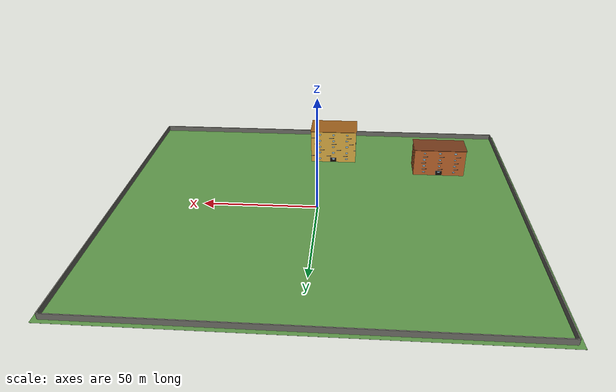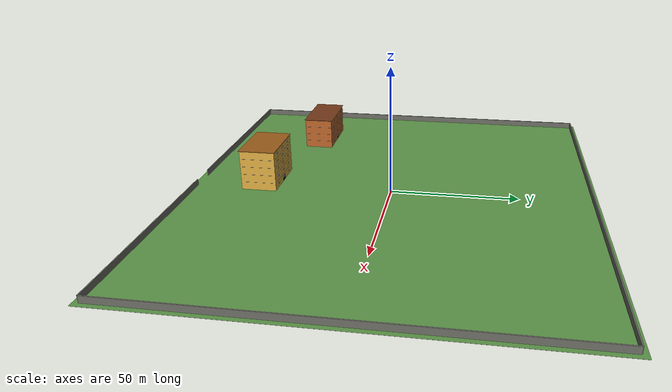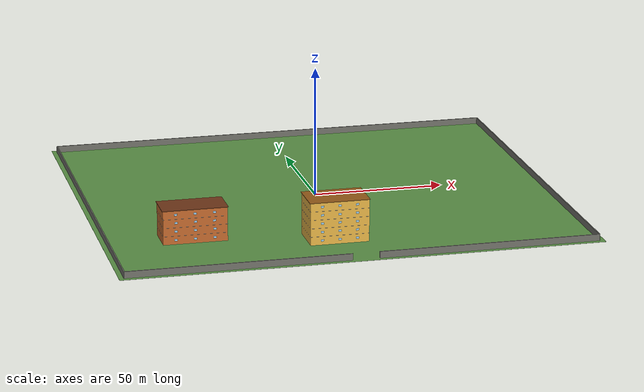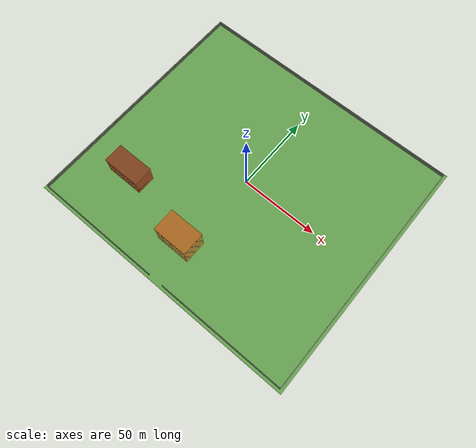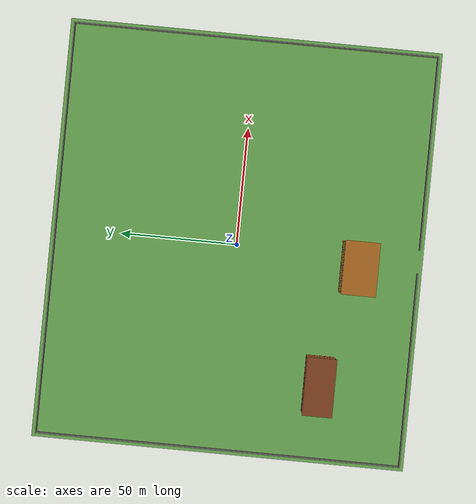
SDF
<sdf version="1.7">
 <world name="campus_regional">
  <model name="campus_ground">
   <static>true</static>
   <link name="ground">
    <pose>0.000 0.000 -0.015 0 0 0</pose>
    <collision name="collision"><geometry><box><size>180.000 160.000 0.030</size></box></geometry></collision>
    <visual name="visual">
     <geometry><box><size>180.000 160.000 0.030</size></box></geometry>
     <material><ambient>0.360 0.580 0.280 1.000</ambient><diffuse>0.360 0.580 0.280 1.000</diffuse></material>
    </visual>
   </link>
  </model>
  <model name="campus_wall">
   <static>true</static>
   <link name="west_wall">
    <pose>-88.000 0.000 1.250 0 0 0</pose>
    <collision name="collision"><geometry><box><size>0.400 156.000 2.500</size></box></geometry></collision>
    <visual name="visual">
     <geometry><box><size>0.400 156.000 2.500</size></box></geometry>
     <material><ambient>0.450 0.450 0.420 1.000</ambient><diffuse>0.450 0.450 0.420 1.000</diffuse></material>
    </visual>
   </link>
   <link name="east_wall">
    <pose>88.000 0.000 1.250 0 0 0</pose>
    <collision name="collision"><geometry><box><size>0.400 156.000 2.500</size></box></geometry></collision>
    <visual name="visual">
     <geometry><box><size>0.400 156.000 2.500</size></box></geometry>
     <material><ambient>0.450 0.450 0.420 1.000</ambient><diffuse>0.450 0.450 0.420 1.000</diffuse></material>
    </visual>
   </link>
   <link name="north_wall">
    <pose>0.000 78.000 1.250 0 0 0</pose>
    <collision name="collision"><geometry><box><size>176.000 0.400 2.500</size></box></geometry></collision>
    <visual name="visual">
     <geometry><box><size>176.000 0.400 2.500</size></box></geometry>
     <material><ambient>0.450 0.450 0.420 1.000</ambient><diffuse>0.450 0.450 0.420 1.000</diffuse></material>
    </visual>
   </link>
   <link name="south_wall_west">
    <pose>-46.500 -78.000 1.250 0 0 0</pose>
    <collision name="collision"><geometry><box><size>83.000 0.400 2.500</size></box></geometry></collision>
    <visual name="visual">
     <geometry><box><size>83.000 0.400 2.500</size></box></geometry>
     <material><ambient>0.450 0.450 0.420 1.000</ambient><diffuse>0.450 0.450 0.420 1.000</diffuse></material>
    </visual>
   </link>
   <link name="south_wall_east">
    <pose>46.500 -78.000 1.250 0 0 0</pose>
    <collision name="collision"><geometry><box><size>83.000 0.400 2.500</size></box></geometry></collision>
    <visual name="visual">
     <geometry><box><size>83.000 0.400 2.500</size></box></geometry>
     <material><ambient>0.450 0.450 0.420 1.000</ambient><diffuse>0.450 0.450 0.420 1.000</diffuse></material>
    </visual>
   </link>
  </model>
  <model name="cafeteria">
   <static>true</static>
   <pose>-5.0 -52.0 0 0 0 0</pose>
   <link name="body">
    <visual name="body">
     <pose>0 0 8.000 0 0 0</pose>
     <geometry><box><size>22.000 14.000 16.000</size></box></geometry>
     <material><ambient>0.920 0.720 0.280 1.000</ambient><diffuse>0.920 0.720 0.280 1.000</diffuse></material>
    </visual>
    <collision name="body_collision">
     <pose>0 0 8.000 0 0 0</pose>
     <geometry><box><size>22.000 14.000 16.000</size></box></geometry>
    </collision>
    <visual name="roof">
     <pose>0 0 16.100 0 0 0</pose>
     <geometry><box><size>22.600 14.600 0.200</size></box></geometry>
     <material><ambient>0.600 0.360 0.100 1.000</ambient><diffuse>0.600 0.360 0.100 1.000</diffuse></material>
    </visual>
    <visual name="floor_sep_n_1">
     <pose>0 7.018 3.200 0 0 0</pose>
     <geometry><box><size>22.100 0.035 0.060</size></box></geometry>
     <material><ambient>0.080 0.080 0.080 1.000</ambient><diffuse>0.080 0.080 0.080 1.000</diffuse></material>
    </visual>
    <visual name="floor_sep_s_1">
     <pose>0 -7.018 3.200 0 0 0</pose>
     <geometry><box><size>22.100 0.035 0.060</size></box></geometry>
     <material><ambient>0.080 0.080 0.080 1.000</ambient><diffuse>0.080 0.080 0.080 1.000</diffuse></material>
    </visual>
    <visual name="floor_sep_e_1">
     <pose>11.018 0 3.200 0 0 0</pose>
     <geometry><box><size>0.035 14.100 0.060</size></box></geometry>
     <material><ambient>0.080 0.080 0.080 1.000</ambient><diffuse>0.080 0.080 0.080 1.000</diffuse></material>
    </visual>
    <visual name="floor_sep_w_1">
     <pose>-11.018 0 3.200 0 0 0</pose>
     <geometry><box><size>0.035 14.100 0.060</size></box></geometry>
     <material><ambient>0.080 0.080 0.080 1.000</ambient><diffuse>0.080 0.080 0.080 1.000</diffuse></material>
    </visual>
    <visual name="floor_sep_n_2">
     <pose>0 7.018 6.400 0 0 0</pose>
     <geometry><box><size>22.100 0.035 0.060</size></box></geometry>
     <material><ambient>0.080 0.080 0.080 1.000</ambient><diffuse>0.080 0.080 0.080 1.000</diffuse></material>
    </visual>
    <visual name="floor_sep_s_2">
     <pose>0 -7.018 6.400 0 0 0</pose>
     <geometry><box><size>22.100 0.035 0.060</size></box></geometry>
     <material><ambient>0.080 0.080 0.080 1.000</ambient><diffuse>0.080 0.080 0.080 1.000</diffuse></material>
    </visual>
    <visual name="floor_sep_e_2">
     <pose>11.018 0 6.400 0 0 0</pose>
     <geometry><box><size>0.035 14.100 0.060</size></box></geometry>
     <material><ambient>0.080 0.080 0.080 1.000</ambient><diffuse>0.080 0.080 0.080 1.000</diffuse></material>
    </visual>
    <visual name="floor_sep_w_2">
     <pose>-11.018 0 6.400 0 0 0</pose>
     <geometry><box><size>0.035 14.100 0.060</size></box></geometry>
     <material><ambient>0.080 0.080 0.080 1.000</ambient><diffuse>0.080 0.080 0.080 1.000</diffuse></material>
    </visual>
    <visual name="floor_sep_n_3">
     <pose>0 7.018 9.600 0 0 0</pose>
     <geometry><box><size>22.100 0.035 0.060</size></box></geometry>
     <material><ambient>0.080 0.080 0.080 1.000</ambient><diffuse>0.080 0.080 0.080 1.000</diffuse></material>
    </visual>
    <visual name="floor_sep_s_3">
     <pose>0 -7.018 9.600 0 0 0</pose>
     <geometry><box><size>22.100 0.035 0.060</size></box></geometry>
     <material><ambient>0.080 0.080 0.080 1.000</ambient><diffuse>0.080 0.080 0.080 1.000</diffuse></material>
    </visual>
    <visual name="floor_sep_e_3">
     <pose>11.018 0 9.600 0 0 0</pose>
     <geometry><box><size>0.035 14.100 0.060</size></box></geometry>
     <material><ambient>0.080 0.080 0.080 1.000</ambient><diffuse>0.080 0.080 0.080 1.000</diffuse></material>
    </visual>
    <visual name="floor_sep_w_3">
     <pose>-11.018 0 9.600 0 0 0</pose>
     <geometry><box><size>0.035 14.100 0.060</size></box></geometry>
     <material><ambient>0.080 0.080 0.080 1.000</ambient><diffuse>0.080 0.080 0.080 1.000</diffuse></material>
    </visual>
    <visual name="floor_sep_n_4">
     <pose>0 7.018 12.800 0 0 0</pose>
     <geometry><box><size>22.100 0.035 0.060</size></box></geometry>
     <material><ambient>0.080 0.080 0.080 1.000</ambient><diffuse>0.080 0.080 0.080 1.000</diffuse></material>
    </visual>
    <visual name="floor_sep_s_4">
     <pose>0 -7.018 12.800 0 0 0</pose>
     <geometry><box><size>22.100 0.035 0.060</size></box></geometry>
     <material><ambient>0.080 0.080 0.080 1.000</ambient><diffuse>0.080 0.080 0.080 1.000</diffuse></material>
    </visual>
    <visual name="floor_sep_e_4">
     <pose>11.018 0 12.800 0 0 0</pose>
     <geometry><box><size>0.035 14.100 0.060</size></box></geometry>
     <material><ambient>0.080 0.080 0.080 1.000</ambient><diffuse>0.080 0.080 0.080 1.000</diffuse></material>
    </visual>
    <visual name="floor_sep_w_4">
     <pose>-11.018 0 12.800 0 0 0</pose>
     <geometry><box><size>0.035 14.100 0.060</size></box></geometry>
     <material><ambient>0.080 0.080 0.080 1.000</ambient><diffuse>0.080 0.080 0.080 1.000</diffuse></material>
    </visual>
    <visual name="front_door">
     <pose>0 7.012 1.2 0 0 0</pose>
     <geometry><box><size>3.000 0.050 2.400</size></box></geometry>
     <material><ambient>0.080 0.060 0.040 1.000</ambient><diffuse>0.080 0.060 0.040 1.000</diffuse></material>
    </visual>
    <visual name="win_n_1_-6.6">
     <pose>-6.600 7.020 1.700 0 0 0</pose>
     <geometry><box><size>1.100 0.035 0.750</size></box></geometry>
     <material><ambient>0.620 0.820 0.950 1.000</ambient><diffuse>0.620 0.820 0.950 1.000</diffuse></material>
    </visual>
    <visual name="win_s_1_-6.6">
     <pose>-6.600 -7.020 1.700 0 0 0</pose>
     <geometry><box><size>1.100 0.035 0.750</size></box></geometry>
     <material><ambient>0.620 0.820 0.950 1.000</ambient><diffuse>0.620 0.820 0.950 1.000</diffuse></material>
    </visual>
    <visual name="win_n_1_0.0">
     <pose>0.000 7.020 1.700 0 0 0</pose>
     <geometry><box><size>1.100 0.035 0.750</size></box></geometry>
     <material><ambient>0.620 0.820 0.950 1.000</ambient><diffuse>0.620 0.820 0.950 1.000</diffuse></material>
    </visual>
    <visual name="win_s_1_0.0">
     <pose>0.000 -7.020 1.700 0 0 0</pose>
     <geometry><box><size>1.100 0.035 0.750</size></box></geometry>
     <material><ambient>0.620 0.820 0.950 1.000</ambient><diffuse>0.620 0.820 0.950 1.000</diffuse></material>
    </visual>
    <visual name="win_n_1_6.6">
     <pose>6.600 7.020 1.700 0 0 0</pose>
     <geometry><box><size>1.100 0.035 0.750</size></box></geometry>
     <material><ambient>0.620 0.820 0.950 1.000</ambient><diffuse>0.620 0.820 0.950 1.000</diffuse></material>
    </visual>
    <visual name="win_s_1_6.6">
     <pose>6.600 -7.020 1.700 0 0 0</pose>
     <geometry><box><size>1.100 0.035 0.750</size></box></geometry>
     <material><ambient>0.620 0.820 0.950 1.000</ambient><diffuse>0.620 0.820 0.950 1.000</diffuse></material>
    </visual>
    <visual name="win_n_2_-6.6">
     <pose>-6.600 7.020 4.900 0 0 0</pose>
     <geometry><box><size>1.100 0.035 0.750</size></box></geometry>
     <material><ambient>0.620 0.820 0.950 1.000</ambient><diffuse>0.620 0.820 0.950 1.000</diffuse></material>
    </visual>
    <visual name="win_s_2_-6.6">
     <pose>-6.600 -7.020 4.900 0 0 0</pose>
     <geometry><box><size>1.100 0.035 0.750</size></box></geometry>
     <material><ambient>0.620 0.820 0.950 1.000</ambient><diffuse>0.620 0.820 0.950 1.000</diffuse></material>
    </visual>
    <visual name="win_n_2_0.0">
     <pose>0.000 7.020 4.900 0 0 0</pose>
     <geometry><box><size>1.100 0.035 0.750</size></box></geometry>
     <material><ambient>0.620 0.820 0.950 1.000</ambient><diffuse>0.620 0.820 0.950 1.000</diffuse></material>
    </visual>
    <visual name="win_s_2_0.0">
     <pose>0.000 -7.020 4.900 0 0 0</pose>
     <geometry><box><size>1.100 0.035 0.750</size></box></geometry>
     <material><ambient>0.620 0.820 0.950 1.000</ambient><diffuse>0.620 0.820 0.950 1.000</diffuse></material>
    </visual>
    <visual name="win_n_2_6.6">
     <pose>6.600 7.020 4.900 0 0 0</pose>
     <geometry><box><size>1.100 0.035 0.750</size></box></geometry>
     <material><ambient>0.620 0.820 0.950 1.000</ambient><diffuse>0.620 0.820 0.950 1.000</diffuse></material>
    </visual>
    <visual name="win_s_2_6.6">
     <pose>6.600 -7.020 4.900 0 0 0</pose>
     <geometry><box><size>1.100 0.035 0.750</size></box></geometry>
     <material><ambient>0.620 0.820 0.950 1.000</ambient><diffuse>0.620 0.820 0.950 1.000</diffuse></material>
    </visual>
    <visual name="win_n_3_-6.6">
     <pose>-6.600 7.020 8.100 0 0 0</pose>
     <geometry><box><size>1.100 0.035 0.750</size></box></geometry>
     <material><ambient>0.620 0.820 0.950 1.000</ambient><diffuse>0.620 0.820 0.950 1.000</diffuse></material>
    </visual>
    <visual name="win_s_3_-6.6">
     <pose>-6.600 -7.020 8.100 0 0 0</pose>
     <geometry><box><size>1.100 0.035 0.750</size></box></geometry>
     <material><ambient>0.620 0.820 0.950 1.000</ambient><diffuse>0.620 0.820 0.950 1.000</diffuse></material>
    </visual>
    <visual name="win_n_3_0.0">
     <pose>0.000 7.020 8.100 0 0 0</pose>
     <geometry><box><size>1.100 0.035 0.750</size></box></geometry>
     <material><ambient>0.620 0.820 0.950 1.000</ambient><diffuse>0.620 0.820 0.950 1.000</diffuse></material>
    </visual>
    <visual name="win_s_3_0.0">
     <pose>0.000 -7.020 8.100 0 0 0</pose>
     <geometry><box><size>1.100 0.035 0.750</size></box></geometry>
     <material><ambient>0.620 0.820 0.950 1.000</ambient><diffuse>0.620 0.820 0.950 1.000</diffuse></material>
    </visual>
    <visual name="win_n_3_6.6">
     <pose>6.600 7.020 8.100 0 0 0</pose>
     <geometry><box><size>1.100 0.035 0.750</size></box></geometry>
     <material><ambient>0.620 0.820 0.950 1.000</ambient><diffuse>0.620 0.820 0.950 1.000</diffuse></material>
    </visual>
    <visual name="win_s_3_6.6">
     <pose>6.600 -7.020 8.100 0 0 0</pose>
     <geometry><box><size>1.100 0.035 0.750</size></box></geometry>
     <material><ambient>0.620 0.820 0.950 1.000</ambient><diffuse>0.620 0.820 0.950 1.000</diffuse></material>
    </visual>
    <visual name="win_n_4_-6.6">
     <pose>-6.600 7.020 11.300 0 0 0</pose>
     <geometry><box><size>1.100 0.035 0.750</size></box></geometry>
     <material><ambient>0.620 0.820 0.950 1.000</ambient><diffuse>0.620 0.820 0.950 1.000</diffuse></material>
    </visual>
    <visual name="win_s_4_-6.6">
     <pose>-6.600 -7.020 11.300 0 0 0</pose>
     <geometry><box><size>1.100 0.035 0.750</size></box></geometry>
     <material><ambient>0.620 0.820 0.950 1.000</ambient><diffuse>0.620 0.820 0.950 1.000</diffuse></material>
    </visual>
    <visual name="win_n_4_0.0">
     <pose>0.000 7.020 11.300 0 0 0</pose>
     <geometry><box><size>1.100 0.035 0.750</size></box></geometry>
     <material><ambient>0.620 0.820 0.950 1.000</ambient><diffuse>0.620 0.820 0.950 1.000</diffuse></material>
    </visual>
    <visual name="win_s_4_0.0">
     <pose>0.000 -7.020 11.300 0 0 0</pose>
     <geometry><box><size>1.100 0.035 0.750</size></box></geometry>
     <material><ambient>0.620 0.820 0.950 1.000</ambient><diffuse>0.620 0.820 0.950 1.000</diffuse></material>
    </visual>
    <visual name="win_n_4_6.6">
     <pose>6.600 7.020 11.300 0 0 0</pose>
     <geometry><box><size>1.100 0.035 0.750</size></box></geometry>
     <material><ambient>0.620 0.820 0.950 1.000</ambient><diffuse>0.620 0.820 0.950 1.000</diffuse></material>
    </visual>
    <visual name="win_s_4_6.6">
     <pose>6.600 -7.020 11.300 0 0 0</pose>
     <geometry><box><size>1.100 0.035 0.750</size></box></geometry>
     <material><ambient>0.620 0.820 0.950 1.000</ambient><diffuse>0.620 0.820 0.950 1.000</diffuse></material>
    </visual>
    <visual name="win_n_5_-6.6">
     <pose>-6.600 7.020 14.500 0 0 0</pose>
     <geometry><box><size>1.100 0.035 0.750</size></box></geometry>
     <material><ambient>0.620 0.820 0.950 1.000</ambient><diffuse>0.620 0.820 0.950 1.000</diffuse></material>
    </visual>
    <visual name="win_s_5_-6.6">
     <pose>-6.600 -7.020 14.500 0 0 0</pose>
     <geometry><box><size>1.100 0.035 0.750</size></box></geometry>
     <material><ambient>0.620 0.820 0.950 1.000</ambient><diffuse>0.620 0.820 0.950 1.000</diffuse></material>
    </visual>
    <visual name="win_n_5_0.0">
     <pose>0.000 7.020 14.500 0 0 0</pose>
     <geometry><box><size>1.100 0.035 0.750</size></box></geometry>
     <material><ambient>0.620 0.820 0.950 1.000</ambient><diffuse>0.620 0.820 0.950 1.000</diffuse></material>
    </visual>
    <visual name="win_s_5_0.0">
     <pose>0.000 -7.020 14.500 0 0 0</pose>
     <geometry><box><size>1.100 0.035 0.750</size></box></geometry>
     <material><ambient>0.620 0.820 0.950 1.000</ambient><diffuse>0.620 0.820 0.950 1.000</diffuse></material>
    </visual>
    <visual name="win_n_5_6.6">
     <pose>6.600 7.020 14.500 0 0 0</pose>
     <geometry><box><size>1.100 0.035 0.750</size></box></geometry>
     <material><ambient>0.620 0.820 0.950 1.000</ambient><diffuse>0.620 0.820 0.950 1.000</diffuse></material>
    </visual>
    <visual name="win_s_5_6.6">
     <pose>6.600 -7.020 14.500 0 0 0</pose>
     <geometry><box><size>1.100 0.035 0.750</size></box></geometry>
     <material><ambient>0.620 0.820 0.950 1.000</ambient><diffuse>0.620 0.820 0.950 1.000</diffuse></material>
    </visual>
   </link>
  </model>
  <model name="logistics_center">
   <static>true</static>
   <pose>-56.0 -40.0 0 0 0 0</pose>
   <link name="body">
    <visual name="body">
     <pose>0 0 6.400 0 0 0</pose>
     <geometry><box><size>24.000 12.000 12.800</size></box></geometry>
     <material><ambient>0.780 0.420 0.180 1.000</ambient><diffuse>0.780 0.420 0.180 1.000</diffuse></material>
    </visual>
    <collision name="body_collision">
     <pose>0 0 6.400 0 0 0</pose>
     <geometry><box><size>24.000 12.000 12.800</size></box></geometry>
    </collision>
    <visual name="roof">
     <pose>0 0 12.900 0 0 0</pose>
     <geometry><box><size>24.600 12.600 0.200</size></box></geometry>
     <material><ambient>0.450 0.220 0.100 1.000</ambient><diffuse>0.450 0.220 0.100 1.000</diffuse></material>
    </visual>
    <visual name="floor_sep_n_1">
     <pose>0 6.018 3.200 0 0 0</pose>
     <geometry><box><size>24.100 0.035 0.060</size></box></geometry>
     <material><ambient>0.080 0.080 0.080 1.000</ambient><diffuse>0.080 0.080 0.080 1.000</diffuse></material>
    </visual>
    <visual name="floor_sep_s_1">
     <pose>0 -6.018 3.200 0 0 0</pose>
     <geometry><box><size>24.100 0.035 0.060</size></box></geometry>
     <material><ambient>0.080 0.080 0.080 1.000</ambient><diffuse>0.080 0.080 0.080 1.000</diffuse></material>
    </visual>
    <visual name="floor_sep_e_1">
     <pose>12.018 0 3.200 0 0 0</pose>
     <geometry><box><size>0.035 12.100 0.060</size></box></geometry>
     <material><ambient>0.080 0.080 0.080 1.000</ambient><diffuse>0.080 0.080 0.080 1.000</diffuse></material>
    </visual>
    <visual name="floor_sep_w_1">
     <pose>-12.018 0 3.200 0 0 0</pose>
     <geometry><box><size>0.035 12.100 0.060</size></box></geometry>
     <material><ambient>0.080 0.080 0.080 1.000</ambient><diffuse>0.080 0.080 0.080 1.000</diffuse></material>
    </visual>
    <visual name="floor_sep_n_2">
     <pose>0 6.018 6.400 0 0 0</pose>
     <geometry><box><size>24.100 0.035 0.060</size></box></geometry>
     <material><ambient>0.080 0.080 0.080 1.000</ambient><diffuse>0.080 0.080 0.080 1.000</diffuse></material>
    </visual>
    <visual name="floor_sep_s_2">
     <pose>0 -6.018 6.400 0 0 0</pose>
     <geometry><box><size>24.100 0.035 0.060</size></box></geometry>
     <material><ambient>0.080 0.080 0.080 1.000</ambient><diffuse>0.080 0.080 0.080 1.000</diffuse></material>
    </visual>
    <visual name="floor_sep_e_2">
     <pose>12.018 0 6.400 0 0 0</pose>
     <geometry><box><size>0.035 12.100 0.060</size></box></geometry>
     <material><ambient>0.080 0.080 0.080 1.000</ambient><diffuse>0.080 0.080 0.080 1.000</diffuse></material>
    </visual>
    <visual name="floor_sep_w_2">
     <pose>-12.018 0 6.400 0 0 0</pose>
     <geometry><box><size>0.035 12.100 0.060</size></box></geometry>
     <material><ambient>0.080 0.080 0.080 1.000</ambient><diffuse>0.080 0.080 0.080 1.000</diffuse></material>
    </visual>
    <visual name="floor_sep_n_3">
     <pose>0 6.018 9.600 0 0 0</pose>
     <geometry><box><size>24.100 0.035 0.060</size></box></geometry>
     <material><ambient>0.080 0.080 0.080 1.000</ambient><diffuse>0.080 0.080 0.080 1.000</diffuse></material>
    </visual>
    <visual name="floor_sep_s_3">
     <pose>0 -6.018 9.600 0 0 0</pose>
     <geometry><box><size>24.100 0.035 0.060</size></box></geometry>
     <material><ambient>0.080 0.080 0.080 1.000</ambient><diffuse>0.080 0.080 0.080 1.000</diffuse></material>
    </visual>
    <visual name="floor_sep_e_3">
     <pose>12.018 0 9.600 0 0 0</pose>
     <geometry><box><size>0.035 12.100 0.060</size></box></geometry>
     <material><ambient>0.080 0.080 0.080 1.000</ambient><diffuse>0.080 0.080 0.080 1.000</diffuse></material>
    </visual>
    <visual name="floor_sep_w_3">
     <pose>-12.018 0 9.600 0 0 0</pose>
     <geometry><box><size>0.035 12.100 0.060</size></box></geometry>
     <material><ambient>0.080 0.080 0.080 1.000</ambient><diffuse>0.080 0.080 0.080 1.000</diffuse></material>
    </visual>
    <visual name="front_door">
     <pose>0 6.012 1.2 0 0 0</pose>
     <geometry><box><size>3.000 0.050 2.400</size></box></geometry>
     <material><ambient>0.080 0.060 0.040 1.000</ambient><diffuse>0.080 0.060 0.040 1.000</diffuse></material>
    </visual>
    <visual name="win_n_1_-7.2">
     <pose>-7.200 6.020 1.700 0 0 0</pose>
     <geometry><box><size>1.100 0.035 0.750</size></box></geometry>
     <material><ambient>0.620 0.820 0.950 1.000</ambient><diffuse>0.620 0.820 0.950 1.000</diffuse></material>
    </visual>
    <visual name="win_s_1_-7.2">
     <pose>-7.200 -6.020 1.700 0 0 0</pose>
     <geometry><box><size>1.100 0.035 0.750</size></box></geometry>
     <material><ambient>0.620 0.820 0.950 1.000</ambient><diffuse>0.620 0.820 0.950 1.000</diffuse></material>
    </visual>
    <visual name="win_n_1_0.0">
     <pose>0.000 6.020 1.700 0 0 0</pose>
     <geometry><box><size>1.100 0.035 0.750</size></box></geometry>
     <material><ambient>0.620 0.820 0.950 1.000</ambient><diffuse>0.620 0.820 0.950 1.000</diffuse></material>
    </visual>
    <visual name="win_s_1_0.0">
     <pose>0.000 -6.020 1.700 0 0 0</pose>
     <geometry><box><size>1.100 0.035 0.750</size></box></geometry>
     <material><ambient>0.620 0.820 0.950 1.000</ambient><diffuse>0.620 0.820 0.950 1.000</diffuse></material>
    </visual>
    <visual name="win_n_1_7.2">
     <pose>7.200 6.020 1.700 0 0 0</pose>
     <geometry><box><size>1.100 0.035 0.750</size></box></geometry>
     <material><ambient>0.620 0.820 0.950 1.000</ambient><diffuse>0.620 0.820 0.950 1.000</diffuse></material>
    </visual>
    <visual name="win_s_1_7.2">
     <pose>7.200 -6.020 1.700 0 0 0</pose>
     <geometry><box><size>1.100 0.035 0.750</size></box></geometry>
     <material><ambient>0.620 0.820 0.950 1.000</ambient><diffuse>0.620 0.820 0.950 1.000</diffuse></material>
    </visual>
    <visual name="win_n_2_-7.2">
     <pose>-7.200 6.020 4.900 0 0 0</pose>
     <geometry><box><size>1.100 0.035 0.750</size></box></geometry>
     <material><ambient>0.620 0.820 0.950 1.000</ambient><diffuse>0.620 0.820 0.950 1.000</diffuse></material>
    </visual>
    <visual name="win_s_2_-7.2">
     <pose>-7.200 -6.020 4.900 0 0 0</pose>
     <geometry><box><size>1.100 0.035 0.750</size></box></geometry>
     <material><ambient>0.620 0.820 0.950 1.000</ambient><diffuse>0.620 0.820 0.950 1.000</diffuse></material>
    </visual>
    <visual name="win_n_2_0.0">
     <pose>0.000 6.020 4.900 0 0 0</pose>
     <geometry><box><size>1.100 0.035 0.750</size></box></geometry>
     <material><ambient>0.620 0.820 0.950 1.000</ambient><diffuse>0.620 0.820 0.950 1.000</diffuse></material>
    </visual>
    <visual name="win_s_2_0.0">
     <pose>0.000 -6.020 4.900 0 0 0</pose>
     <geometry><box><size>1.100 0.035 0.750</size></box></geometry>
     <material><ambient>0.620 0.820 0.950 1.000</ambient><diffuse>0.620 0.820 0.950 1.000</diffuse></material>
    </visual>
    <visual name="win_n_2_7.2">
     <pose>7.200 6.020 4.900 0 0 0</pose>
     <geometry><box><size>1.100 0.035 0.750</size></box></geometry>
     <material><ambient>0.620 0.820 0.950 1.000</ambient><diffuse>0.620 0.820 0.950 1.000</diffuse></material>
    </visual>
    <visual name="win_s_2_7.2">
     <pose>7.200 -6.020 4.900 0 0 0</pose>
     <geometry><box><size>1.100 0.035 0.750</size></box></geometry>
     <material><ambient>0.620 0.820 0.950 1.000</ambient><diffuse>0.620 0.820 0.950 1.000</diffuse></material>
    </visual>
    <visual name="win_n_3_-7.2">
     <pose>-7.200 6.020 8.100 0 0 0</pose>
     <geometry><box><size>1.100 0.035 0.750</size></box></geometry>
     <material><ambient>0.620 0.820 0.950 1.000</ambient><diffuse>0.620 0.820 0.950 1.000</diffuse></material>
    </visual>
    <visual name="win_s_3_-7.2">
     <pose>-7.200 -6.020 8.100 0 0 0</pose>
     <geometry><box><size>1.100 0.035 0.750</size></box></geometry>
     <material><ambient>0.620 0.820 0.950 1.000</ambient><diffuse>0.620 0.820 0.950 1.000</diffuse></material>
    </visual>
    <visual name="win_n_3_0.0">
     <pose>0.000 6.020 8.100 0 0 0</pose>
     <geometry><box><size>1.100 0.035 0.750</size></box></geometry>
     <material><ambient>0.620 0.820 0.950 1.000</ambient><diffuse>0.620 0.820 0.950 1.000</diffuse></material>
    </visual>
    <visual name="win_s_3_0.0">
     <pose>0.000 -6.020 8.100 0 0 0</pose>
     <geometry><box><size>1.100 0.035 0.750</size></box></geometry>
     <material><ambient>0.620 0.820 0.950 1.000</ambient><diffuse>0.620 0.820 0.950 1.000</diffuse></material>
    </visual>
    <visual name="win_n_3_7.2">
     <pose>7.200 6.020 8.100 0 0 0</pose>
     <geometry><box><size>1.100 0.035 0.750</size></box></geometry>
     <material><ambient>0.620 0.820 0.950 1.000</ambient><diffuse>0.620 0.820 0.950 1.000</diffuse></material>
    </visual>
    <visual name="win_s_3_7.2">
     <pose>7.200 -6.020 8.100 0 0 0</pose>
     <geometry><box><size>1.100 0.035 0.750</size></box></geometry>
     <material><ambient>0.620 0.820 0.950 1.000</ambient><diffuse>0.620 0.820 0.950 1.000</diffuse></material>
    </visual>
    <visual name="win_n_4_-7.2">
     <pose>-7.200 6.020 11.300 0 0 0</pose>
     <geometry><box><size>1.100 0.035 0.750</size></box></geometry>
     <material><ambient>0.620 0.820 0.950 1.000</ambient><diffuse>0.620 0.820 0.950 1.000</diffuse></material>
    </visual>
    <visual name="win_s_4_-7.2">
     <pose>-7.200 -6.020 11.300 0 0 0</pose>
     <geometry><box><size>1.100 0.035 0.750</size></box></geometry>
     <material><ambient>0.620 0.820 0.950 1.000</ambient><diffuse>0.620 0.820 0.950 1.000</diffuse></material>
    </visual>
    <visual name="win_n_4_0.0">
     <pose>0.000 6.020 11.300 0 0 0</pose>
     <geometry><box><size>1.100 0.035 0.750</size></box></geometry>
     <material><ambient>0.620 0.820 0.950 1.000</ambient><diffuse>0.620 0.820 0.950 1.000</diffuse></material>
    </visual>
    <visual name="win_s_4_0.0">
     <pose>0.000 -6.020 11.300 0 0 0</pose>
     <geometry><box><size>1.100 0.035 0.750</size></box></geometry>
     <material><ambient>0.620 0.820 0.950 1.000</ambient><diffuse>0.620 0.820 0.950 1.000</diffuse></material>
    </visual>
    <visual name="win_n_4_7.2">
     <pose>7.200 6.020 11.300 0 0 0</pose>
     <geometry><box><size>1.100 0.035 0.750</size></box></geometry>
     <material><ambient>0.620 0.820 0.950 1.000</ambient><diffuse>0.620 0.820 0.950 1.000</diffuse></material>
    </visual>
    <visual name="win_s_4_7.2">
     <pose>7.200 -6.020 11.300 0 0 0</pose>
     <geometry><box><size>1.100 0.035 0.750</size></box></geometry>
     <material><ambient>0.620 0.820 0.950 1.000</ambient><diffuse>0.620 0.820 0.950 1.000</diffuse></material>
    </visual>
   </link>
  </model>
 </world>
</sdf>
